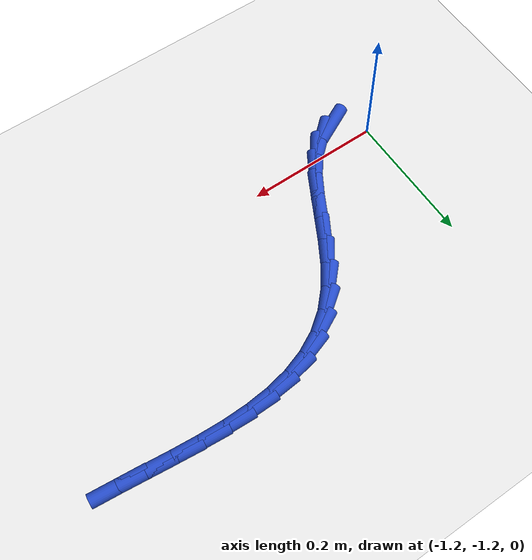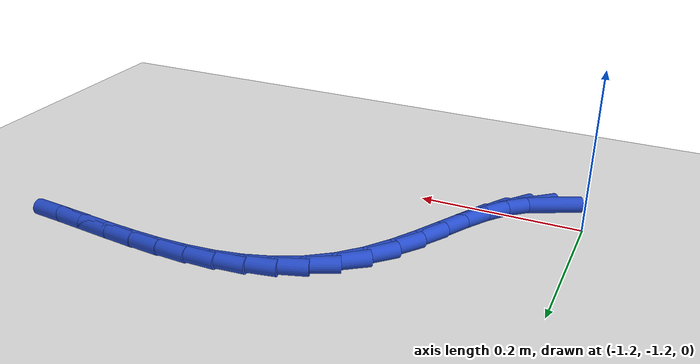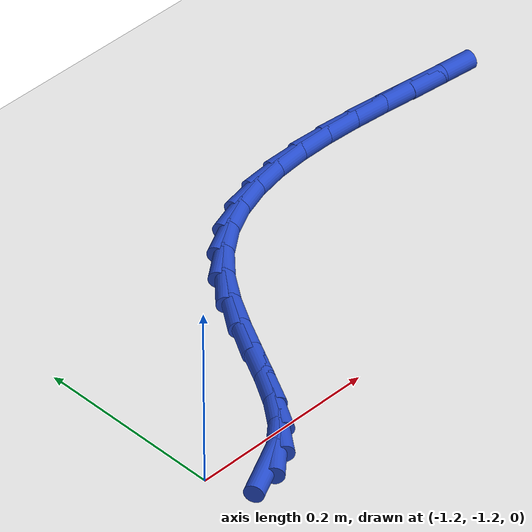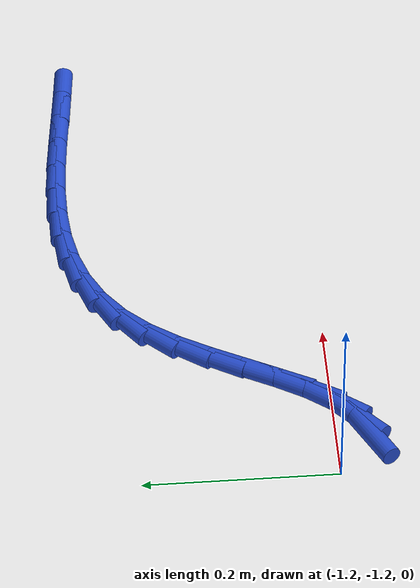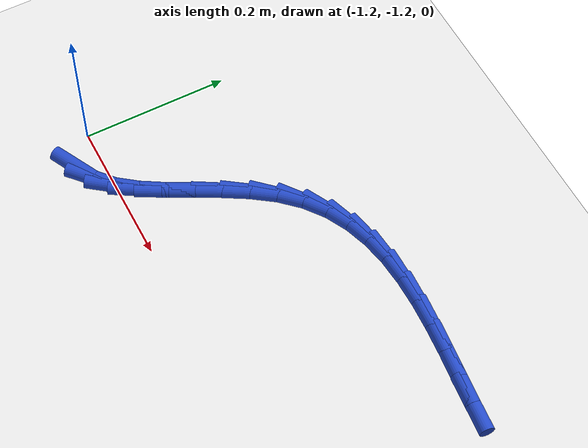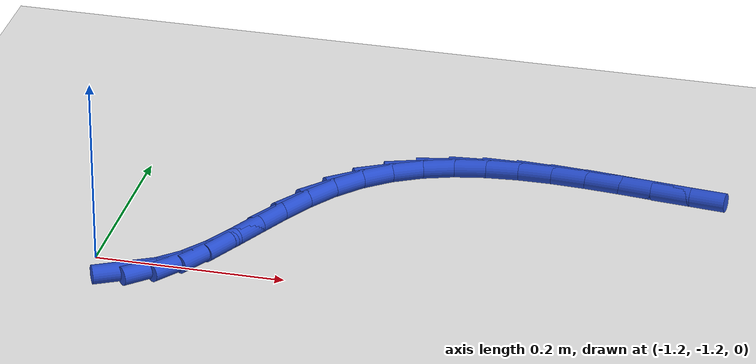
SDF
<sdf version="1.6">
 <world name="default">
  <model name="ground_plane">
   <static>1</static>
   <link name="link">
    <collision name="collision">
     <geometry><plane><normal>0 0 1</normal><size>100 100</size></plane></geometry>
     <surface><friction><ode><mu>100</mu><mu2>50</mu2></ode></friction></surface>
    </collision>
    <visual name="visual">
     <cast_shadows>0</cast_shadows>
     <geometry><plane><normal>0 0 1</normal><size>100 100</size></plane></geometry>
     <material>
      <script><uri>file://media/materials/scripts/gazebo.material</uri><name>Gazebo/WhiteGlow</name></script>
     </material>
    </visual>
   </link>
  </model>
  <model name="line">
   <link name="link_175">
    <pose>-1.1529777548906823 -1.2330791245038688 0.01 0 1.57 0.470434872302914</pose>
    <collision name="collision">
     <geometry><cylinder><radius>0.01</radius><length>0.08</length></cylinder></geometry>
    </collision>
    <visual name="visual">
     <material>
      <script><name>Gazebo/Blue</name><uri>file://media/materials/scripts/gazebo.material</uri></script>
     </material>
     <geometry><cylinder><radius>0.01</radius><length>0.08</length></cylinder></geometry>
    </visual>
   </link>
   <link name="link_176">
    <pose>-1.1283317808169506 -1.2205463238207186 0.01 0 1.57 0.7284614061940112</pose>
    <collision name="collision">
     <geometry><cylinder><radius>0.01</radius><length>0.08</length></cylinder></geometry>
    </collision>
    <visual name="visual">
     <material>
      <script><name>Gazebo/Blue</name><uri>file://media/materials/scripts/gazebo.material</uri></script>
     </material>
     <geometry><cylinder><radius>0.01</radius><length>0.08</length></cylinder></geometry>
    </visual>
   </link>
   <link name="link_177">
    <pose>-1.1067208575486658 -1.2012661274278873 0.01 0 1.57 0.9219434065940053</pose>
    <collision name="collision">
     <geometry><cylinder><radius>0.01</radius><length>0.08</length></cylinder></geometry>
    </collision>
    <visual name="visual">
     <material>
      <script><name>Gazebo/Blue</name><uri>file://media/materials/scripts/gazebo.material</uri></script>
     </material>
     <geometry><cylinder><radius>0.01</radius><length>0.08</length></cylinder></geometry>
    </visual>
   </link>
   <link name="link_178">
    <pose>-1.0876051616326685 -1.1760606987674693 0.01 0 1.57 1.0330431668393265</pose>
    <collision name="collision">
     <geometry><cylinder><radius>0.01</radius><length>0.08</length></cylinder></geometry>
    </collision>
    <visual name="visual">
     <material>
      <script><name>Gazebo/Blue</name><uri>file://media/materials/scripts/gazebo.material</uri></script>
     </material>
     <geometry><cylinder><radius>0.01</radius><length>0.08</length></cylinder></geometry>
    </visual>
   </link>
   <link name="link_179">
    <pose>-1.070023661337199 -1.1465803116827862 0.01 0 1.57 1.0833818586070019</pose>
    <collision name="collision">
     <geometry><cylinder><radius>0.01</radius><length>0.08</length></cylinder></geometry>
    </collision>
    <visual name="visual">
     <material>
      <script><name>Gazebo/Blue</name><uri>file://media/materials/scripts/gazebo.material</uri></script>
     </material>
     <geometry><cylinder><radius>0.01</radius><length>0.08</length></cylinder></geometry>
    </visual>
   </link>
   <link name="link_180">
    <pose>-1.0530105995060521 -1.1144845303690678 0.01 0 1.57 1.08596791538526</pose>
    <collision name="collision">
     <geometry><cylinder><radius>0.01</radius><length>0.08</length></cylinder></geometry>
    </collision>
    <visual name="visual">
     <material>
      <script><name>Gazebo/Blue</name><uri>file://media/materials/scripts/gazebo.material</uri></script>
     </material>
     <geometry><cylinder><radius>0.01</radius><length>0.08</length></cylinder></geometry>
    </visual>
   </link>
   <link name="link_181">
    <pose>-1.0356002189830202 -1.0814329190215433 0.01 0 1.57 1.0449422151602648</pose>
    <collision name="collision">
     <geometry><cylinder><radius>0.01</radius><length>0.08</length></cylinder></geometry>
    </collision>
    <visual name="visual">
     <material>
      <script><name>Gazebo/Blue</name><uri>file://media/materials/scripts/gazebo.material</uri></script>
     </material>
     <geometry><cylinder><radius>0.01</radius><length>0.08</length></cylinder></geometry>
    </visual>
   </link>
   <link name="link_182">
    <pose>-1.016826762611898 -1.049085041835442 0.01 0 1.57 0.9575436956829486</pose>
    <collision name="collision">
     <geometry><cylinder><radius>0.01</radius><length>0.08</length></cylinder></geometry>
    </collision>
    <visual name="visual">
     <material>
      <script><name>Gazebo/Blue</name><uri>file://media/materials/scripts/gazebo.material</uri></script>
     </material>
     <geometry><cylinder><radius>0.01</radius><length>0.08</length></cylinder></geometry>
    </visual>
   </link>
   <link name="link_183">
    <pose>-0.9957244732364783 -1.0191004630059932 0.01 0 1.57 0.8174458061853563</pose>
    <collision name="collision">
     <geometry><cylinder><radius>0.01</radius><length>0.08</length></cylinder></geometry>
    </collision>
    <visual name="visual">
     <material>
      <script><name>Gazebo/Blue</name><uri>file://media/materials/scripts/gazebo.material</uri></script>
     </material>
     <geometry><cylinder><radius>0.01</radius><length>0.08</length></cylinder></geometry>
    </visual>
   </link>
   <link name="link_184">
    <pose>-0.9713582079916945 -0.9931201561987663 0.01 0 1.57 0.647031761535806</pose>
    <collision name="collision">
     <geometry><cylinder><radius>0.01</radius><length>0.08</length></cylinder></geometry>
    </collision>
    <visual name="visual">
     <material>
      <script><name>Gazebo/Blue</name><uri>file://media/materials/scripts/gazebo.material</uri></script>
     </material>
     <geometry><cylinder><radius>0.01</radius><length>0.08</length></cylinder></geometry>
    </visual>
   </link>
   <link name="link_185">
    <pose>-0.9437078405488254 -0.9722294377311281 0.01 0 1.57 0.4776650766893184</pose>
    <collision name="collision">
     <geometry><cylinder><radius>0.01</radius><length>0.08</length></cylinder></geometry>
    </collision>
    <visual name="visual">
     <material>
      <script><name>Gazebo/Blue</name><uri>file://media/materials/scripts/gazebo.material</uri></script>
     </material>
     <geometry><cylinder><radius>0.01</radius><length>0.08</length></cylinder></geometry>
    </visual>
   </link>
   <link name="link_186">
    <pose>-0.9136575913181627 -0.9566740262468719 0.01 0 1.57 0.32329110897966606</pose>
    <collision name="collision">
     <geometry><cylinder><radius>0.01</radius><length>0.08</length></cylinder></geometry>
    </collision>
    <visual name="visual">
     <material>
      <script><name>Gazebo/Blue</name><uri>file://media/materials/scripts/gazebo.material</uri></script>
     </material>
     <geometry><cylinder><radius>0.01</radius><length>0.08</length></cylinder></geometry>
    </visual>
   </link>
   <link name="link_187">
    <pose>-0.8816276534793066 -0.9459425255688084 0.01 0 1.57 0.1928026574046926</pose>
    <collision name="collision">
     <geometry><cylinder><radius>0.01</radius><length>0.08</length></cylinder></geometry>
    </collision>
    <visual name="visual">
     <material>
      <script><name>Gazebo/Blue</name><uri>file://media/materials/scripts/gazebo.material</uri></script>
     </material>
     <geometry><cylinder><radius>0.01</radius><length>0.08</length></cylinder></geometry>
    </visual>
   </link>
   <link name="link_188">
    <pose>-0.8479215841400118 -0.9393621661101081 0.01 0 1.57 0.08820010129328568</pose>
    <collision name="collision">
     <geometry><cylinder><radius>0.01</radius><length>0.08</length></cylinder></geometry>
    </collision>
    <visual name="visual">
     <material>
      <script><name>Gazebo/Blue</name><uri>file://media/materials/scripts/gazebo.material</uri></script>
     </material>
     <geometry><cylinder><radius>0.01</radius><length>0.08</length></cylinder></geometry>
    </visual>
   </link>
   <link name="link_189">
    <pose>-0.8128429404080371 -0.9362601782839439 0.01 0 1.57 0.008199123553689819</pose>
    <collision name="collision">
     <geometry><cylinder><radius>0.01</radius><length>0.08</length></cylinder></geometry>
    </collision>
    <visual name="visual">
     <material>
      <script><name>Gazebo/Blue</name><uri>file://media/materials/scripts/gazebo.material</uri></script>
     </material>
     <geometry><cylinder><radius>0.01</radius><length>0.08</length></cylinder></geometry>
    </visual>
   </link>
   <link name="link_190">
    <pose>-0.7766952793911367 -0.9359637925034864 0.01 0 1.57 -0.0497095267813693</pose>
    <collision name="collision">
     <geometry><cylinder><radius>0.01</radius><length>0.08</length></cylinder></geometry>
    </collision>
    <visual name="visual">
     <material>
      <script><name>Gazebo/Blue</name><uri>file://media/materials/scripts/gazebo.material</uri></script>
     </material>
     <geometry><cylinder><radius>0.01</radius><length>0.08</length></cylinder></geometry>
    </visual>
   </link>
   <link name="link_191">
    <pose>-0.7397821581970676 -0.9378002391819079 0.01 0 1.57 -0.08797321243460275</pose>
    <collision name="collision">
     <geometry><cylinder><radius>0.01</radius><length>0.08</length></cylinder></geometry>
    </collision>
    <visual name="visual">
     <material>
      <script><name>Gazebo/Blue</name><uri>file://media/materials/scripts/gazebo.material</uri></script>
     </material>
     <geometry><cylinder><radius>0.01</radius><length>0.08</length></cylinder></geometry>
    </visual>
   </link>
   <link name="link_192">
    <pose>-0.7024071339335843 -0.9410967487323796 0.01 0 1.57 -0.10837825214442516</pose>
    <collision name="collision">
     <geometry><cylinder><radius>0.01</radius><length>0.08</length></cylinder></geometry>
    </collision>
    <visual name="visual">
     <material>
      <script><name>Gazebo/Blue</name><uri>file://media/materials/scripts/gazebo.material</uri></script>
     </material>
     <geometry><cylinder><radius>0.01</radius><length>0.08</length></cylinder></geometry>
    </visual>
   </link>
   <link name="link_193">
    <pose>-0.6648737637084451 -0.9451805515680729 0.01 0 1.57 -0.11182185031077806</pose>
    <collision name="collision">
     <geometry><cylinder><radius>0.01</radius><length>0.08</length></cylinder></geometry>
    </collision>
    <visual name="visual">
     <material>
      <script><name>Gazebo/Blue</name><uri>file://media/materials/scripts/gazebo.material</uri></script>
     </material>
     <geometry><cylinder><radius>0.01</radius><length>0.08</length></cylinder></geometry>
    </visual>
   </link>
   <link name="link_194">
    <pose>-0.6274856046294054 -0.9493788781021596 0.01 0 1.57 -0.09822485913594876</pose>
    <collision name="collision">
     <geometry><cylinder><radius>0.01</radius><length>0.08</length></cylinder></geometry>
    </collision>
    <visual name="visual">
     <material>
      <script><name>Gazebo/Blue</name><uri>file://media/materials/scripts/gazebo.material</uri></script>
     </material>
     <geometry><cylinder><radius>0.01</radius><length>0.08</length></cylinder></geometry>
    </visual>
   </link>
  </model>
 </world>
</sdf>
